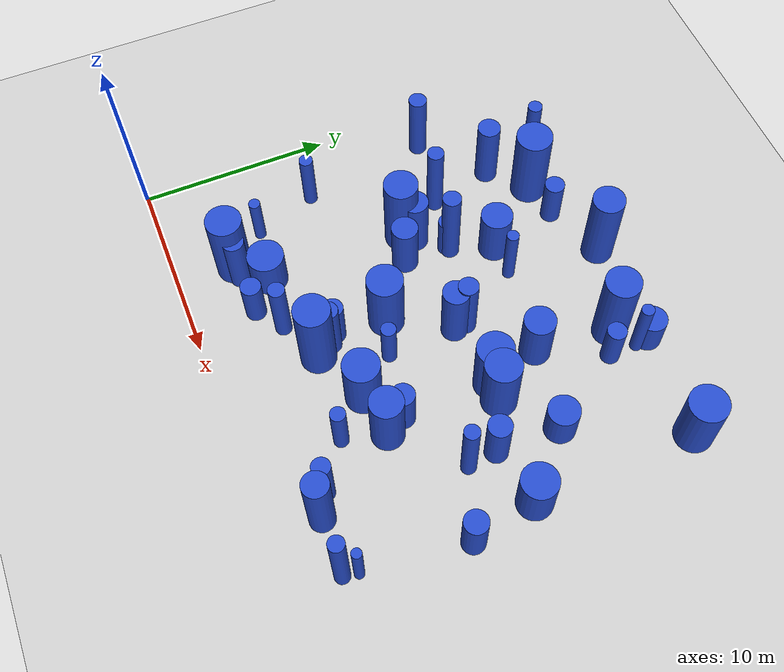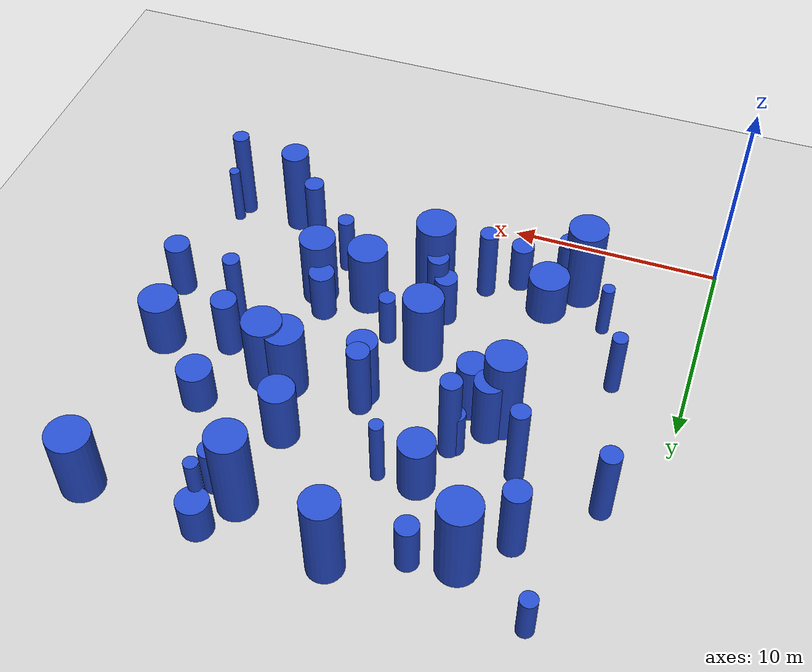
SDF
<sdf version="1.6">
 <world name="default">
  <model name="ground_plane">
   <static>1</static>
   <link name="link">
    <collision name="collision">
     <geometry><plane><normal>0 0 1</normal><size>100 100</size></plane></geometry>
     <surface><friction><ode><mu>100</mu><mu2>50</mu2></ode></friction></surface>
    </collision>
    <visual name="visual">
     <cast_shadows>0</cast_shadows>
     <geometry><plane><normal>0 0 1</normal><size>100 100</size></plane></geometry>
     <material>
      <script><uri>file://media/materials/scripts/gazebo.material</uri><name>Gazebo/Grey</name></script>
     </material>
    </visual>
   </link>
  </model>
  <model name="3">
   <static>0</static>
   <link name="link">
    <inertial>
     <mass>2</mass>
     <inertia><ixx>3.92775</ixx><ixy>0</ixy><ixz>0</ixz><iyy>3.92775</iyy><iyz>0</iyz><izz>0.695081</izz></inertia>
    </inertial>
    <collision name="collision">
     <geometry><cylinder><length>4.63479</length><radius>0.833715</radius></cylinder></geometry>
     <surface><contact><collide_without_contact>1</collide_without_contact></contact></surface>
    </collision>
    <visual name="visual">
     <geometry><cylinder><length>4.63479</length><radius>0.833715</radius></cylinder></geometry>
     <material>
      <script><uri>file://media/materials/scripts/gazebo.material</uri><name>Gazebo/Blue</name></script>
     </material>
    </visual>
    <gravity>0</gravity>
   </link>
   <pose>12.2422 21.1681 2.31739 0 -0 0</pose>
  </model>
  <model name="12">
   <static>0</static>
   <link name="link">
    <inertial>
     <mass>2</mass>
     <inertia><ixx>4.25183</ixx><ixy>0</ixy><ixz>0</ixz><iyy>4.25183</iyy><iyz>0</iyz><izz>0.805611</izz></inertia>
    </inertial>
    <collision name="collision">
     <geometry><cylinder><length>4.80564</length><radius>0.897558</radius></cylinder></geometry>
     <surface><contact><collide_without_contact>1</collide_without_contact></contact></surface>
    </collision>
    <visual name="visual">
     <geometry><cylinder><length>4.80564</length><radius>0.897558</radius></cylinder></geometry>
     <material>
      <script><uri>file://media/materials/scripts/gazebo.material</uri><name>Gazebo/Blue</name></script>
     </material>
    </visual>
    <gravity>0</gravity>
   </link>
   <pose>16.8242 19.5526 2.40282 0 -0 0</pose>
  </model>
  <model name="14">
   <static>0</static>
   <link name="link">
    <inertial>
     <mass>2</mass>
     <inertia><ixx>1.64079</ixx><ixy>0</ixy><ixz>0</ixz><iyy>1.64079</iyy><iyz>0</iyz><izz>0.150374</izz></inertia>
    </inertial>
    <collision name="collision">
     <geometry><cylinder><length>3.0649</length><radius>0.38778</radius></cylinder></geometry>
     <surface><contact><collide_without_contact>1</collide_without_contact></contact></surface>
    </collision>
    <visual name="visual">
     <geometry><cylinder><length>3.0649</length><radius>0.38778</radius></cylinder></geometry>
     <material>
      <script><uri>file://media/materials/scripts/gazebo.material</uri><name>Gazebo/Blue</name></script>
     </material>
    </visual>
    <gravity>0</gravity>
   </link>
   <pose>17.3165 4.85681 1.53245 0 -0 0</pose>
  </model>
  <model name="24">
   <static>0</static>
   <link name="link">
    <inertial>
     <mass>2</mass>
     <inertia><ixx>1.33099</ixx><ixy>0</ixy><ixz>0</ixz><iyy>1.33099</iyy><iyz>0</iyz><izz>0.36083</izz></inertia>
    </inertial>
    <collision name="collision">
     <geometry><cylinder><length>2.62744</length><radius>0.600691</radius></cylinder></geometry>
     <surface><contact><collide_without_contact>1</collide_without_contact></contact></surface>
    </collision>
    <visual name="visual">
     <geometry><cylinder><length>2.62744</length><radius>0.600691</radius></cylinder></geometry>
     <material>
      <script><uri>file://media/materials/scripts/gazebo.material</uri><name>Gazebo/Blue</name></script>
     </material>
    </visual>
    <gravity>0</gravity>
   </link>
   <pose>17.3457 8.06964 1.31372 0 -0 0</pose>
  </model>
  <model name="26">
   <static>0</static>
   <link name="link">
    <inertial>
     <mass>2</mass>
     <inertia><ixx>1.75387</ixx><ixy>0</ixy><ixz>0</ixz><iyy>1.75387</iyy><iyz>0</iyz><izz>0.848622</izz></inertia>
    </inertial>
    <collision name="collision">
     <geometry><cylinder><length>2.82442</length><radius>0.921207</radius></cylinder></geometry>
     <surface><contact><collide_without_contact>1</collide_without_contact></contact></surface>
    </collision>
    <visual name="visual">
     <geometry><cylinder><length>2.82442</length><radius>0.921207</radius></cylinder></geometry>
     <material>
      <script><uri>file://media/materials/scripts/gazebo.material</uri><name>Gazebo/Blue</name></script>
     </material>
    </visual>
    <gravity>0</gravity>
   </link>
   <pose>23.683 12.1353 1.41221 0 -0 0</pose>
  </model>
  <model name="34">
   <static>0</static>
   <link name="link">
    <inertial>
     <mass>2</mass>
     <inertia><ixx>2.73964</ixx><ixy>0</ixy><ixz>0</ixz><iyy>2.73964</iyy><iyz>0</iyz><izz>0.355039</izz></inertia>
    </inertial>
    <collision name="collision">
     <geometry><cylinder><length>3.92081</length><radius>0.595852</radius></cylinder></geometry>
     <surface><contact><collide_without_contact>1</collide_without_contact></contact></surface>
    </collision>
    <visual name="visual">
     <geometry><cylinder><length>3.92081</length><radius>0.595852</radius></cylinder></geometry>
     <material>
      <script><uri>file://media/materials/scripts/gazebo.material</uri><name>Gazebo/Blue</name></script>
     </material>
    </visual>
    <gravity>0</gravity>
   </link>
   <pose>5.35862 17.7826 1.9604 0 -0 0</pose>
  </model>
  <model name="43">
   <static>0</static>
   <link name="link">
    <inertial>
     <mass>2</mass>
     <inertia><ixx>1.09648</ixx><ixy>0</ixy><ixz>0</ixz><iyy>1.09648</iyy><iyz>0</iyz><izz>0.193563</izz></inertia>
    </inertial>
    <collision name="collision">
     <geometry><cylinder><length>2.44912</length><radius>0.439957</radius></cylinder></geometry>
     <surface><contact><collide_without_contact>1</collide_without_contact></contact></surface>
    </collision>
    <visual name="visual">
     <geometry><cylinder><length>2.44912</length><radius>0.439957</radius></cylinder></geometry>
     <material>
      <script><uri>file://media/materials/scripts/gazebo.material</uri><name>Gazebo/Blue</name></script>
     </material>
    </visual>
    <gravity>0</gravity>
   </link>
   <pose>9.04417 13.8401 1.22456 0 -0 0</pose>
  </model>
  <model name="45">
   <static>0</static>
   <link name="link">
    <inertial>
     <mass>2</mass>
     <inertia><ixx>2.79189</ixx><ixy>0</ixy><ixz>0</ixz><iyy>2.79189</iyy><iyz>0</iyz><izz>0.226924</izz></inertia>
    </inertial>
    <collision name="collision">
     <geometry><cylinder><length>4.00881</length><radius>0.476365</radius></cylinder></geometry>
     <surface><contact><collide_without_contact>1</collide_without_contact></contact></surface>
    </collision>
    <visual name="visual">
     <geometry><cylinder><length>4.00881</length><radius>0.476365</radius></cylinder></geometry>
     <material>
      <script><uri>file://media/materials/scripts/gazebo.material</uri><name>Gazebo/Blue</name></script>
     </material>
    </visual>
    <gravity>0</gravity>
   </link>
   <pose>2.27674 14.996 2.00441 0 -0 0</pose>
  </model>
  <model name="51">
   <static>0</static>
   <link name="link">
    <inertial>
     <mass>2</mass>
     <inertia><ixx>1.29974</ixx><ixy>0</ixy><ixz>0</ixz><iyy>1.29974</iyy><iyz>0</iyz><izz>0.9226</izz></inertia>
    </inertial>
    <collision name="collision">
     <geometry><cylinder><length>2.24292</length><radius>0.960521</radius></cylinder></geometry>
     <surface><contact><collide_without_contact>1</collide_without_contact></contact></surface>
    </collision>
    <visual name="visual">
     <geometry><cylinder><length>2.24292</length><radius>0.960521</radius></cylinder></geometry>
     <material>
      <script><uri>file://media/materials/scripts/gazebo.material</uri><name>Gazebo/Blue</name></script>
     </material>
    </visual>
    <gravity>0</gravity>
   </link>
   <pose>7.33392 4.56687 1.12146 0 -0 0</pose>
  </model>
  <model name="53">
   <static>0</static>
   <link name="link">
    <inertial>
     <mass>2</mass>
     <inertia><ixx>2.15544</ixx><ixy>0</ixy><ixz>0</ixz><iyy>2.15544</iyy><iyz>0</iyz><izz>0.1005</izz></inertia>
    </inertial>
    <collision name="collision">
     <geometry><cylinder><length>3.55403</length><radius>0.317017</radius></cylinder></geometry>
     <surface><contact><collide_without_contact>1</collide_without_contact></contact></surface>
    </collision>
    <visual name="visual">
     <geometry><cylinder><length>3.55403</length><radius>0.317017</radius></cylinder></geometry>
     <material>
      <script><uri>file://media/materials/scripts/gazebo.material</uri><name>Gazebo/Blue</name></script>
     </material>
    </visual>
    <gravity>0</gravity>
   </link>
   <pose>11.7398 16.245 1.77701 0 -0 0</pose>
  </model>
  <model name="59">
   <static>0</static>
   <link name="link">
    <inertial>
     <mass>2</mass>
     <inertia><ixx>2.2693</ixx><ixy>0</ixy><ixz>0</ixz><iyy>2.2693</iyy><iyz>0</iyz><izz>0.485292</izz></inertia>
    </inertial>
    <collision name="collision">
     <geometry><cylinder><length>3.4871</length><radius>0.696629</radius></cylinder></geometry>
     <surface><contact><collide_without_contact>1</collide_without_contact></contact></surface>
    </collision>
    <visual name="visual">
     <geometry><cylinder><length>3.4871</length><radius>0.696629</radius></cylinder></geometry>
     <material>
      <script><uri>file://media/materials/scripts/gazebo.material</uri><name>Gazebo/Blue</name></script>
     </material>
    </visual>
    <gravity>0</gravity>
   </link>
   <pose>7.96873 12.509 1.74355 0 -0 0</pose>
  </model>
  <model name="65">
   <static>0</static>
   <link name="link">
    <inertial>
     <mass>2</mass>
     <inertia><ixx>1.80656</ixx><ixy>0</ixy><ixz>0</ixz><iyy>1.80656</iyy><iyz>0</iyz><izz>0.358625</izz></inertia>
    </inertial>
    <collision name="collision">
     <geometry><cylinder><length>3.12466</length><radius>0.598853</radius></cylinder></geometry>
     <surface><contact><collide_without_contact>1</collide_without_contact></contact></surface>
    </collision>
    <visual name="visual">
     <geometry><cylinder><length>3.12466</length><radius>0.598853</radius></cylinder></geometry>
     <material>
      <script><uri>file://media/materials/scripts/gazebo.material</uri><name>Gazebo/Blue</name></script>
     </material>
    </visual>
    <gravity>0</gravity>
   </link>
   <pose>20.6952 11.5157 1.56233 0 -0 0</pose>
  </model>
  <model name="71">
   <static>0</static>
   <link name="link">
    <inertial>
     <mass>2</mass>
     <inertia><ixx>2.9831</ixx><ixy>0</ixy><ixz>0</ixz><iyy>2.9831</iyy><iyz>0</iyz><izz>0.155993</izz></inertia>
    </inertial>
    <collision name="collision">
     <geometry><cylinder><length>4.175</length><radius>0.39496</radius></cylinder></geometry>
     <surface><contact><collide_without_contact>1</collide_without_contact></contact></surface>
    </collision>
    <visual name="visual">
     <geometry><cylinder><length>4.175</length><radius>0.39496</radius></cylinder></geometry>
     <material>
      <script><uri>file://media/materials/scripts/gazebo.material</uri><name>Gazebo/Blue</name></script>
     </material>
    </visual>
    <gravity>0</gravity>
   </link>
   <pose>20.8944 9.97858 2.0875 0 -0 0</pose>
  </model>
  <model name="73">
   <static>0</static>
   <link name="link">
    <inertial>
     <mass>2</mass>
     <inertia><ixx>1.32394</ixx><ixy>0</ixy><ixz>0</ixz><iyy>1.32394</iyy><iyz>0</iyz><izz>0.152551</izz></inertia>
    </inertial>
    <collision name="collision">
     <geometry><cylinder><length>2.73605</length><radius>0.390578</radius></cylinder></geometry>
     <surface><contact><collide_without_contact>1</collide_without_contact></contact></surface>
    </collision>
    <visual name="visual">
     <geometry><cylinder><length>2.73605</length><radius>0.390578</radius></cylinder></geometry>
     <material>
      <script><uri>file://media/materials/scripts/gazebo.material</uri><name>Gazebo/Blue</name></script>
     </material>
    </visual>
    <gravity>0</gravity>
   </link>
   <pose>13.9061 8.69924 1.36803 0 -0 0</pose>
  </model>
  <model name="76">
   <static>0</static>
   <link name="link">
    <inertial>
     <mass>2</mass>
     <inertia><ixx>2.40693</ixx><ixy>0</ixy><ixz>0</ixz><iyy>2.40693</iyy><iyz>0</iyz><izz>0.874203</izz></inertia>
    </inertial>
    <collision name="collision">
     <geometry><cylinder><length>3.43787</length><radius>0.934988</radius></cylinder></geometry>
     <surface><contact><collide_without_contact>1</collide_without_contact></contact></surface>
    </collision>
    <visual name="visual">
     <geometry><cylinder><length>3.43787</length><radius>0.934988</radius></cylinder></geometry>
     <material>
      <script><uri>file://media/materials/scripts/gazebo.material</uri><name>Gazebo/Blue</name></script>
     </material>
    </visual>
    <gravity>0</gravity>
   </link>
   <pose>15.5573 6.6876 1.71894 0 -0 0</pose>
  </model>
  <model name="79">
   <static>0</static>
   <link name="link">
    <inertial>
     <mass>2</mass>
     <inertia><ixx>1.08131</ixx><ixy>0</ixy><ixz>0</ixz><iyy>1.08131</iyy><iyz>0</iyz><izz>0.651344</izz></inertia>
    </inertial>
    <collision name="collision">
     <geometry><cylinder><length>2.12928</length><radius>0.807059</radius></cylinder></geometry>
     <surface><contact><collide_without_contact>1</collide_without_contact></contact></surface>
    </collision>
    <visual name="visual">
     <geometry><cylinder><length>2.12928</length><radius>0.807059</radius></cylinder></geometry>
     <material>
      <script><uri>file://media/materials/scripts/gazebo.material</uri><name>Gazebo/Blue</name></script>
     </material>
    </visual>
    <gravity>0</gravity>
   </link>
   <pose>20.7416 14.8606 1.06464 0 -0 0</pose>
  </model>
  <model name="81">
   <static>0</static>
   <link name="link">
    <inertial>
     <mass>2</mass>
     <inertia><ixx>1.97243</ixx><ixy>0</ixy><ixz>0</ixz><iyy>1.97243</iyy><iyz>0</iyz><izz>0.220158</izz></inertia>
    </inertial>
    <collision name="collision">
     <geometry><cylinder><length>3.34277</length><radius>0.46921</radius></cylinder></geometry>
     <surface><contact><collide_without_contact>1</collide_without_contact></contact></surface>
    </collision>
    <visual name="visual">
     <geometry><cylinder><length>3.34277</length><radius>0.46921</radius></cylinder></geometry>
     <material>
      <script><uri>file://media/materials/scripts/gazebo.material</uri><name>Gazebo/Blue</name></script>
     </material>
    </visual>
    <gravity>0</gravity>
   </link>
   <pose>19.5533 3.24828 1.67138 0 -0 0</pose>
  </model>
  <model name="90">
   <static>0</static>
   <link name="link">
    <inertial>
     <mass>2</mass>
     <inertia><ixx>1.53943</ixx><ixy>0</ixy><ixz>0</ixz><iyy>1.53943</iyy><iyz>0</iyz><izz>0.367092</izz></inertia>
    </inertial>
    <collision name="collision">
     <geometry><cylinder><length>2.85225</length><radius>0.605881</radius></cylinder></geometry>
     <surface><contact><collide_without_contact>1</collide_without_contact></contact></surface>
    </collision>
    <visual name="visual">
     <geometry><cylinder><length>2.85225</length><radius>0.605881</radius></cylinder></geometry>
     <material>
      <script><uri>file://media/materials/scripts/gazebo.material</uri><name>Gazebo/Blue</name></script>
     </material>
    </visual>
    <gravity>0</gravity>
   </link>
   <pose>24.3639 8.72064 1.42612 0 -0 0</pose>
  </model>
  <model name="93">
   <static>0</static>
   <link name="link">
    <inertial>
     <mass>2</mass>
     <inertia><ixx>1.32771</ixx><ixy>0</ixy><ixz>0</ixz><iyy>1.32771</iyy><iyz>0</iyz><izz>0.270722</izz></inertia>
    </inertial>
    <collision name="collision">
     <geometry><cylinder><length>2.67471</length><radius>0.520309</radius></cylinder></geometry>
     <surface><contact><collide_without_contact>1</collide_without_contact></contact></surface>
    </collision>
    <visual name="visual">
     <geometry><cylinder><length>2.67471</length><radius>0.520309</radius></cylinder></geometry>
     <material>
      <script><uri>file://media/materials/scripts/gazebo.material</uri><name>Gazebo/Blue</name></script>
     </material>
    </visual>
    <gravity>0</gravity>
   </link>
   <pose>9.17424 19.8977 1.33735 0 -0 0</pose>
  </model>
  <model name="101">
   <static>0</static>
   <link name="link">
    <inertial>
     <mass>2</mass>
     <inertia>
      <ixx>1.34979</ixx>
      <ixy>0</ixy>
      <ixz>0</ixz>
      <iyy>1.34979</iyy>
      <iyz>0</iyz>
      <izz>0.0901958</izz>
     </inertia>
    </inertial>
    <collision name="collision">
     <geometry><cylinder><length>2.79788</length><radius>0.300326</radius></cylinder></geometry>
     <surface><contact><collide_without_contact>1</collide_without_contact></contact></surface>
    </collision>
    <visual name="visual">
     <geometry><cylinder><length>2.79788</length><radius>0.300326</radius></cylinder></geometry>
     <material>
      <script><uri>file://media/materials/scripts/gazebo.material</uri><name>Gazebo/Blue</name></script>
     </material>
    </visual>
    <gravity>0</gravity>
   </link>
   <pose>4.49145 5.00371 1.39894 0 -0 0</pose>
  </model>
  <model name="102">
   <static>0</static>
   <link name="link">
    <inertial>
     <mass>2</mass>
     <inertia><ixx>3.77962</ixx><ixy>0</ixy><ixz>0</ixz><iyy>3.77962</iyy><iyz>0</iyz><izz>0.157259</izz></inertia>
    </inertial>
    <collision name="collision">
     <geometry><cylinder><length>4.71232</length><radius>0.396559</radius></cylinder></geometry>
     <surface><contact><collide_without_contact>1</collide_without_contact></contact></surface>
    </collision>
    <visual name="visual">
     <geometry><cylinder><length>4.71232</length><radius>0.396559</radius></cylinder></geometry>
     <material>
      <script><uri>file://media/materials/scripts/gazebo.material</uri><name>Gazebo/Blue</name></script>
     </material>
    </visual>
    <gravity>0</gravity>
   </link>
   <pose>23.5561 2.59339 2.35616 0 -0 0</pose>
  </model>
  <model name="105">
   <static>0</static>
   <link name="link">
    <inertial>
     <mass>2</mass>
     <inertia><ixx>3.37564</ixx><ixy>0</ixy><ixz>0</ixz><iyy>3.37564</iyy><iyz>0</iyz><izz>0.188264</izz></inertia>
    </inertial>
    <collision name="collision">
     <geometry><cylinder><length>4.43724</length><radius>0.433894</radius></cylinder></geometry>
     <surface><contact><collide_without_contact>1</collide_without_contact></contact></surface>
    </collision>
    <visual name="visual">
     <geometry><cylinder><length>4.43724</length><radius>0.433894</radius></cylinder></geometry>
     <material>
      <script><uri>file://media/materials/scripts/gazebo.material</uri><name>Gazebo/Blue</name></script>
     </material>
    </visual>
    <gravity>0</gravity>
   </link>
   <pose>6.19335 14.3822 2.21862 0 -0 0</pose>
  </model>
  <model name="112">
   <static>0</static>
   <link name="link">
    <inertial>
     <mass>2</mass>
     <inertia><ixx>2.22649</ixx><ixy>0</ixy><ixz>0</ixz><iyy>2.22649</iyy><iyz>0</iyz><izz>0.105243</izz></inertia>
    </inertial>
    <collision name="collision">
     <geometry><cylinder><length>3.61154</length><radius>0.324412</radius></cylinder></geometry>
     <surface><contact><collide_without_contact>1</collide_without_contact></contact></surface>
    </collision>
    <visual name="visual">
     <geometry><cylinder><length>3.61154</length><radius>0.324412</radius></cylinder></geometry>
     <material>
      <script><uri>file://media/materials/scripts/gazebo.material</uri><name>Gazebo/Blue</name></script>
     </material>
    </visual>
    <gravity>0</gravity>
   </link>
   <pose>18.0812 20.4251 1.80577 0 -0 0</pose>
  </model>
  <model name="121">
   <static>0</static>
   <link name="link">
    <inertial>
     <mass>2</mass>
     <inertia><ixx>4.19892</ixx><ixy>0</ixy><ixz>0</ixz><iyy>4.19892</iyy><iyz>0</iyz><izz>0.848081</izz></inertia>
    </inertial>
    <collision name="collision">
     <geometry><cylinder><length>4.75913</length><radius>0.920913</radius></cylinder></geometry>
     <surface><contact><collide_without_contact>1</collide_without_contact></contact></surface>
    </collision>
    <visual name="visual">
     <geometry><cylinder><length>4.75913</length><radius>0.920913</radius></cylinder></geometry>
     <material>
      <script><uri>file://media/materials/scripts/gazebo.material</uri><name>Gazebo/Blue</name></script>
     </material>
    </visual>
    <gravity>0</gravity>
   </link>
   <pose>12.6643 5.37511 2.37956 0 -0 0</pose>
  </model>
  <model name="124">
   <static>0</static>
   <link name="link">
    <inertial>
     <mass>2</mass>
     <inertia><ixx>1.34934</ixx><ixy>0</ixy><ixz>0</ixz><iyy>1.34934</iyy><iyz>0</iyz><izz>0.287212</izz></inertia>
    </inertial>
    <collision name="collision">
     <geometry><cylinder><length>2.68969</length><radius>0.535922</radius></cylinder></geometry>
     <surface><contact><collide_without_contact>1</collide_without_contact></contact></surface>
    </collision>
    <visual name="visual">
     <geometry><cylinder><length>2.68969</length><radius>0.535922</radius></cylinder></geometry>
     <material>
      <script><uri>file://media/materials/scripts/gazebo.material</uri><name>Gazebo/Blue</name></script>
     </material>
    </visual>
    <gravity>0</gravity>
   </link>
   <pose>11.7516 6.60939 1.34484 0 -0 0</pose>
  </model>
  <model name="131">
   <static>0</static>
   <link name="link">
    <inertial>
     <mass>2</mass>
     <inertia><ixx>4.03108</ixx><ixy>0</ixy><ixz>0</ixz><iyy>4.03108</iyy><iyz>0</iyz><izz>0.794484</izz></inertia>
    </inertial>
    <collision name="collision">
     <geometry><cylinder><length>4.66937</length><radius>0.891338</radius></cylinder></geometry>
     <surface><contact><collide_without_contact>1</collide_without_contact></contact></surface>
    </collision>
    <visual name="visual">
     <geometry><cylinder><length>4.66937</length><radius>0.891338</radius></cylinder></geometry>
     <material>
      <script><uri>file://media/materials/scripts/gazebo.material</uri><name>Gazebo/Blue</name></script>
     </material>
    </visual>
    <gravity>0</gravity>
   </link>
   <pose>7.50554 11.9354 2.33469 0 -0 0</pose>
  </model>
  <model name="135">
   <static>0</static>
   <link name="link">
    <inertial>
     <mass>2</mass>
     <inertia><ixx>1.0015</ixx><ixy>0</ixy><ixz>0</ixz><iyy>1.0015</iyy><iyz>0</iyz><izz>0.153154</izz></inertia>
    </inertial>
    <collision name="collision">
     <geometry><cylinder><length>2.35575</length><radius>0.391349</radius></cylinder></geometry>
     <surface><contact><collide_without_contact>1</collide_without_contact></contact></surface>
    </collision>
    <visual name="visual">
     <geometry><cylinder><length>2.35575</length><radius>0.391349</radius></cylinder></geometry>
     <material>
      <script><uri>file://media/materials/scripts/gazebo.material</uri><name>Gazebo/Blue</name></script>
     </material>
    </visual>
    <gravity>0</gravity>
   </link>
   <pose>3.82412 21.3325 1.17787 0 -0 0</pose>
  </model>
  <model name="141">
   <static>0</static>
   <link name="link">
    <inertial>
     <mass>2</mass>
     <inertia><ixx>3.06213</ixx><ixy>0</ixy><ixz>0</ixz><iyy>3.06213</iyy><iyz>0</iyz><izz>0.865013</izz></inertia>
    </inertial>
    <collision name="collision">
     <geometry><cylinder><length>3.97212</length><radius>0.930061</radius></cylinder></geometry>
     <surface><contact><collide_without_contact>1</collide_without_contact></contact></surface>
    </collision>
    <visual name="visual">
     <geometry><cylinder><length>3.97212</length><radius>0.930061</radius></cylinder></geometry>
     <material>
      <script><uri>file://media/materials/scripts/gazebo.material</uri><name>Gazebo/Blue</name></script>
     </material>
    </visual>
    <gravity>0</gravity>
   </link>
   <pose>11.9843 9.29499 1.98606 0 -0 0</pose>
  </model>
  <model name="142">
   <static>0</static>
   <link name="link">
    <inertial>
     <mass>2</mass>
     <inertia>
      <ixx>1.59611</ixx>
      <ixy>0</ixy>
      <ixz>0</ixz>
      <iyy>1.59611</iyy>
      <iyz>0</iyz>
      <izz>0.0654625</izz>
     </inertia>
    </inertial>
    <collision name="collision">
     <geometry><cylinder><length>3.06272</length><radius>0.255856</radius></cylinder></geometry>
     <surface><contact><collide_without_contact>1</collide_without_contact></contact></surface>
    </collision>
    <visual name="visual">
     <geometry><cylinder><length>3.06272</length><radius>0.255856</radius></cylinder></geometry>
     <material>
      <script><uri>file://media/materials/scripts/gazebo.material</uri><name>Gazebo/Blue</name></script>
     </material>
    </visual>
    <gravity>0</gravity>
   </link>
   <pose>23.7498 3.3464 1.53136 0 -0 0</pose>
  </model>
  <model name="148">
   <static>0</static>
   <link name="link">
    <inertial>
     <mass>2</mass>
     <inertia><ixx>2.53307</ixx><ixy>0</ixy><ixz>0</ixz><iyy>2.53307</iyy><iyz>0</iyz><izz>0.271163</izz></inertia>
    </inertial>
    <collision name="collision">
     <geometry><cylinder><length>3.79275</length><radius>0.520733</radius></cylinder></geometry>
     <surface><contact><collide_without_contact>1</collide_without_contact></contact></surface>
    </collision>
    <visual name="visual">
     <geometry><cylinder><length>3.79275</length><radius>0.520733</radius></cylinder></geometry>
     <material>
      <script><uri>file://media/materials/scripts/gazebo.material</uri><name>Gazebo/Blue</name></script>
     </material>
    </visual>
    <gravity>0</gravity>
   </link>
   <pose>13.728 12.9555 1.89637 0 -0 0</pose>
  </model>
  <model name="152">
   <static>0</static>
   <link name="link">
    <inertial>
     <mass>2</mass>
     <inertia>
      <ixx>0.925592</ixx>
      <ixy>0</ixy>
      <ixz>0</ixz>
      <iyy>0.925592</iyy>
      <iyz>0</iyz>
      <izz>0.517136</izz>
     </inertia>
    </inertial>
    <collision name="collision">
     <geometry><cylinder><length>2.00054</length><radius>0.719122</radius></cylinder></geometry>
     <surface><contact><collide_without_contact>1</collide_without_contact></contact></surface>
    </collision>
    <visual name="visual">
     <geometry><cylinder><length>2.00054</length><radius>0.719122</radius></cylinder></geometry>
     <material>
      <script><uri>file://media/materials/scripts/gazebo.material</uri><name>Gazebo/Blue</name></script>
     </material>
    </visual>
    <gravity>0</gravity>
   </link>
   <pose>17.9226 21.1337 1.00027 0 -0 0</pose>
  </model>
  <model name="158">
   <static>0</static>
   <link name="link">
    <inertial>
     <mass>2</mass>
     <inertia><ixx>2.58305</ixx><ixy>0</ixy><ixz>0</ixz><iyy>2.58305</iyy><iyz>0</iyz><izz>0.972073</izz></inertia>
    </inertial>
    <collision name="collision">
     <geometry><cylinder><length>3.54713</length><radius>0.985937</radius></cylinder></geometry>
     <surface><contact><collide_without_contact>1</collide_without_contact></contact></surface>
    </collision>
    <visual name="visual">
     <geometry><cylinder><length>3.54713</length><radius>0.985937</radius></cylinder></geometry>
     <material>
      <script><uri>file://media/materials/scripts/gazebo.material</uri><name>Gazebo/Blue</name></script>
     </material>
    </visual>
    <gravity>0</gravity>
   </link>
   <pose>23.4601 20.6996 1.77356 0 -0 0</pose>
  </model>
  <model name="161">
   <static>0</static>
   <link name="link">
    <inertial>
     <mass>2</mass>
     <inertia><ixx>1.20429</ixx><ixy>0</ixy><ixz>0</ixz><iyy>1.20429</iyy><iyz>0</iyz><izz>0.28602</izz></inertia>
    </inertial>
    <collision name="collision">
     <geometry><cylinder><length>2.52343</length><radius>0.534809</radius></cylinder></geometry>
     <surface><contact><collide_without_contact>1</collide_without_contact></contact></surface>
    </collision>
    <visual name="visual">
     <geometry><cylinder><length>2.52343</length><radius>0.534809</radius></cylinder></geometry>
     <material>
      <script><uri>file://media/materials/scripts/gazebo.material</uri><name>Gazebo/Blue</name></script>
     </material>
    </visual>
    <gravity>0</gravity>
   </link>
   <pose>8.96403 3.3004 1.26171 0 -0 0</pose>
  </model>
  <model name="162">
   <static>0</static>
   <link name="link">
    <inertial>
     <mass>2</mass>
     <inertia><ixx>2.51589</ixx><ixy>0</ixy><ixz>0</ixz><iyy>2.51589</iyy><iyz>0</iyz><izz>0.473337</izz></inertia>
    </inertial>
    <collision name="collision">
     <geometry><cylinder><length>3.69802</length><radius>0.687995</radius></cylinder></geometry>
     <surface><contact><collide_without_contact>1</collide_without_contact></contact></surface>
    </collision>
    <visual name="visual">
     <geometry><cylinder><length>3.69802</length><radius>0.687995</radius></cylinder></geometry>
     <material>
      <script><uri>file://media/materials/scripts/gazebo.material</uri><name>Gazebo/Blue</name></script>
     </material>
    </visual>
    <gravity>0</gravity>
   </link>
   <pose>13.7713 12.2969 1.84901 0 -0 0</pose>
  </model>
  <model name="169">
   <static>0</static>
   <link name="link">
    <inertial>
     <mass>2</mass>
     <inertia><ixx>3.62148</ixx><ixy>0</ixy><ixz>0</ixz><iyy>3.62148</iyy><iyz>0</iyz><izz>0.427754</izz></inertia>
    </inertial>
    <collision name="collision">
     <geometry><cylinder><length>4.52169</length><radius>0.654029</radius></cylinder></geometry>
     <surface><contact><collide_without_contact>1</collide_without_contact></contact></surface>
    </collision>
    <visual name="visual">
     <geometry><cylinder><length>4.52169</length><radius>0.654029</radius></cylinder></geometry>
     <material>
      <script><uri>file://media/materials/scripts/gazebo.material</uri><name>Gazebo/Blue</name></script>
     </material>
    </visual>
    <gravity>0</gravity>
   </link>
   <pose>20.7021 2.66802 2.26084 0 -0 0</pose>
  </model>
  <model name="179">
   <static>0</static>
   <link name="link">
    <inertial>
     <mass>2</mass>
     <inertia><ixx>3.63462</ixx><ixy>0</ixy><ixz>0</ixz><iyy>3.63462</iyy><iyz>0</iyz><izz>0.851751</izz></inertia>
    </inertial>
    <collision name="collision">
     <geometry><cylinder><length>4.38776</length><radius>0.922903</radius></cylinder></geometry>
     <surface><contact><collide_without_contact>1</collide_without_contact></contact></surface>
    </collision>
    <visual name="visual">
     <geometry><cylinder><length>4.38776</length><radius>0.922903</radius></cylinder></geometry>
     <material>
      <script><uri>file://media/materials/scripts/gazebo.material</uri><name>Gazebo/Blue</name></script>
     </material>
    </visual>
    <gravity>0</gravity>
   </link>
   <pose>6.0278 3.09668 2.19388 0 -0 0</pose>
  </model>
  <model name="182">
   <static>0</static>
   <link name="link">
    <inertial>
     <mass>2</mass>
     <inertia><ixx>2.68017</ixx><ixy>0</ixy><ixz>0</ixz><iyy>2.68017</iyy><iyz>0</iyz><izz>0.716184</izz></inertia>
    </inertial>
    <collision name="collision">
     <geometry><cylinder><length>3.73262</length><radius>0.846277</radius></cylinder></geometry>
     <surface><contact><collide_without_contact>1</collide_without_contact></contact></surface>
    </collision>
    <visual name="visual">
     <geometry><cylinder><length>3.73262</length><radius>0.846277</radius></cylinder></geometry>
     <material>
      <script><uri>file://media/materials/scripts/gazebo.material</uri><name>Gazebo/Blue</name></script>
     </material>
    </visual>
    <gravity>0</gravity>
   </link>
   <pose>17.889 7.04616 1.86631 0 -0 0</pose>
  </model>
  <model name="184">
   <static>0</static>
   <link name="link">
    <inertial>
     <mass>2</mass>
     <inertia><ixx>1.36803</ixx><ixy>0</ixy><ixz>0</ixz><iyy>1.36803</iyy><iyz>0</iyz><izz>0.116416</izz></inertia>
    </inertial>
    <collision name="collision">
     <geometry><cylinder><length>2.80338</length><radius>0.341198</radius></cylinder></geometry>
     <surface><contact><collide_without_contact>1</collide_without_contact></contact></surface>
    </collision>
    <visual name="visual">
     <geometry><cylinder><length>2.80338</length><radius>0.341198</radius></cylinder></geometry>
     <material>
      <script><uri>file://media/materials/scripts/gazebo.material</uri><name>Gazebo/Blue</name></script>
     </material>
    </visual>
    <gravity>0</gravity>
   </link>
   <pose>8.4751 11.947 1.40169 0 -0 0</pose>
  </model>
  <model name="185">
   <static>0</static>
   <link name="link">
    <inertial>
     <mass>2</mass>
     <inertia><ixx>1.95386</ixx><ixy>0</ixy><ixz>0</ixz><iyy>1.95386</iyy><iyz>0</iyz><izz>0.128086</izz></inertia>
    </inertial>
    <collision name="collision">
     <geometry><cylinder><length>3.36733</length><radius>0.357891</radius></cylinder></geometry>
     <surface><contact><collide_without_contact>1</collide_without_contact></contact></surface>
    </collision>
    <visual name="visual">
     <geometry><cylinder><length>3.36733</length><radius>0.357891</radius></cylinder></geometry>
     <material>
      <script><uri>file://media/materials/scripts/gazebo.material</uri><name>Gazebo/Blue</name></script>
     </material>
    </visual>
    <gravity>0</gravity>
   </link>
   <pose>3.30288 8.27583 1.68366 0 -0 0</pose>
  </model>
  <model name="191">
   <static>0</static>
   <link name="link">
    <inertial>
     <mass>2</mass>
     <inertia><ixx>3.75067</ixx><ixy>0</ixy><ixz>0</ixz><iyy>3.75067</iyy><iyz>0</iyz><izz>0.232087</izz></inertia>
    </inertial>
    <collision name="collision">
     <geometry><cylinder><length>4.66988</length><radius>0.481754</radius></cylinder></geometry>
     <surface><contact><collide_without_contact>1</collide_without_contact></contact></surface>
    </collision>
    <visual name="visual">
     <geometry><cylinder><length>4.66988</length><radius>0.481754</radius></cylinder></geometry>
     <material>
      <script><uri>file://media/materials/scripts/gazebo.material</uri><name>Gazebo/Blue</name></script>
     </material>
    </visual>
    <gravity>0</gravity>
   </link>
   <pose>9.25658 13.9749 2.33494 0 -0 0</pose>
  </model>
  <model name="196">
   <static>0</static>
   <link name="link">
    <inertial>
     <mass>2</mass>
     <inertia><ixx>2.49484</ixx><ixy>0</ixy><ixz>0</ixz><iyy>2.49484</iyy><iyz>0</iyz><izz>0.187798</izz></inertia>
    </inertial>
    <collision name="collision">
     <geometry><cylinder><length>3.79547</length><radius>0.433356</radius></cylinder></geometry>
     <surface><contact><collide_without_contact>1</collide_without_contact></contact></surface>
    </collision>
    <visual name="visual">
     <geometry><cylinder><length>3.79547</length><radius>0.433356</radius></cylinder></geometry>
     <material>
      <script><uri>file://media/materials/scripts/gazebo.material</uri><name>Gazebo/Blue</name></script>
     </material>
    </visual>
    <gravity>0</gravity>
   </link>
   <pose>10.3997 4.29556 1.89774 0 -0 0</pose>
  </model>
  <model name="206">
   <static>0</static>
   <link name="link">
    <inertial>
     <mass>2</mass>
     <inertia><ixx>1.22193</ixx><ixy>0</ixy><ixz>0</ixz><iyy>1.22193</iyy><iyz>0</iyz><izz>0.244229</izz></inertia>
    </inertial>
    <collision name="collision">
     <geometry><cylinder><length>2.56883</length><radius>0.494195</radius></cylinder></geometry>
     <surface><contact><collide_without_contact>1</collide_without_contact></contact></surface>
    </collision>
    <visual name="visual">
     <geometry><cylinder><length>2.56883</length><radius>0.494195</radius></cylinder></geometry>
     <material>
      <script><uri>file://media/materials/scripts/gazebo.material</uri><name>Gazebo/Blue</name></script>
     </material>
    </visual>
    <gravity>0</gravity>
   </link>
   <pose>18.097 18.9432 1.28442 0 -0 0</pose>
  </model>
  <model name="208">
   <static>0</static>
   <link name="link">
    <inertial>
     <mass>2</mass>
     <inertia><ixx>2.09139</ixx><ixy>0</ixy><ixz>0</ixz><iyy>2.09139</iyy><iyz>0</iyz><izz>0.317675</izz></inertia>
    </inertial>
    <collision name="collision">
     <geometry><cylinder><length>3.40519</length><radius>0.563626</radius></cylinder></geometry>
     <surface><contact><collide_without_contact>1</collide_without_contact></contact></surface>
    </collision>
    <visual name="visual">
     <geometry><cylinder><length>3.40519</length><radius>0.563626</radius></cylinder></geometry>
     <material>
      <script><uri>file://media/materials/scripts/gazebo.material</uri><name>Gazebo/Blue</name></script>
     </material>
    </visual>
    <gravity>0</gravity>
   </link>
   <pose>6.72108 3.21492 1.70259 0 -0 0</pose>
  </model>
  <model name="212">
   <static>0</static>
   <link name="link">
    <inertial>
     <mass>2</mass>
     <inertia><ixx>1.88161</ixx><ixy>0</ixy><ixz>0</ixz><iyy>1.88161</iyy><iyz>0</iyz><izz>0.472566</izz></inertia>
    </inertial>
    <collision name="collision">
     <geometry><cylinder><length>3.14197</length><radius>0.687434</radius></cylinder></geometry>
     <surface><contact><collide_without_contact>1</collide_without_contact></contact></surface>
    </collision>
    <visual name="visual">
     <geometry><cylinder><length>3.14197</length><radius>0.687434</radius></cylinder></geometry>
     <material>
      <script><uri>file://media/materials/scripts/gazebo.material</uri><name>Gazebo/Blue</name></script>
     </material>
    </visual>
    <gravity>0</gravity>
   </link>
   <pose>9.0333 11.5159 1.57098 0 -0 0</pose>
  </model>
  <model name="220">
   <static>0</static>
   <link name="link">
    <inertial>
     <mass>2</mass>
     <inertia><ixx>2.01038</ixx><ixy>0</ixy><ixz>0</ixz><iyy>2.01038</iyy><iyz>0</iyz><izz>0.654617</izz></inertia>
    </inertial>
    <collision name="collision">
     <geometry><cylinder><length>3.1778</length><radius>0.809084</radius></cylinder></geometry>
     <surface><contact><collide_without_contact>1</collide_without_contact></contact></surface>
    </collision>
    <visual name="visual">
     <geometry><cylinder><length>3.1778</length><radius>0.809084</radius></cylinder></geometry>
     <material>
      <script><uri>file://media/materials/scripts/gazebo.material</uri><name>Gazebo/Blue</name></script>
     </material>
    </visual>
    <gravity>0</gravity>
   </link>
   <pose>16.4504 15.5437 1.5889 0 -0 0</pose>
  </model>
  <model name="226">
   <static>0</static>
   <link name="link">
    <inertial>
     <mass>2</mass>
     <inertia><ixx>2.73322</ixx><ixy>0</ixy><ixz>0</ixz><iyy>2.73322</iyy><iyz>0</iyz><izz>0.870764</izz></inertia>
    </inertial>
    <collision name="collision">
     <geometry><cylinder><length>3.71309</length><radius>0.933148</radius></cylinder></geometry>
     <surface><contact><collide_without_contact>1</collide_without_contact></contact></surface>
    </collision>
    <visual name="visual">
     <geometry><cylinder><length>3.71309</length><radius>0.933148</radius></cylinder></geometry>
     <material>
      <script><uri>file://media/materials/scripts/gazebo.material</uri><name>Gazebo/Blue</name></script>
     </material>
    </visual>
    <gravity>0</gravity>
   </link>
   <pose>17.2676 12.7973 1.85655 0 -0 0</pose>
  </model>
  <model name="234">
   <static>0</static>
   <link name="link">
    <inertial>
     <mass>2</mass>
     <inertia><ixx>2.17715</ixx><ixy>0</ixy><ixz>0</ixz><iyy>2.17715</iyy><iyz>0</iyz><izz>0.251481</izz></inertia>
    </inertial>
    <collision name="collision">
     <geometry><cylinder><length>3.50834</length><radius>0.501479</radius></cylinder></geometry>
     <surface><contact><collide_without_contact>1</collide_without_contact></contact></surface>
    </collision>
    <visual name="visual">
     <geometry><cylinder><length>3.50834</length><radius>0.501479</radius></cylinder></geometry>
     <material>
      <script><uri>file://media/materials/scripts/gazebo.material</uri><name>Gazebo/Blue</name></script>
     </material>
    </visual>
    <gravity>0</gravity>
   </link>
   <pose>12.2579 6.24214 1.75417 0 -0 0</pose>
  </model>
  <model name="236">
   <static>0</static>
   <link name="link">
    <inertial>
     <mass>2</mass>
     <inertia><ixx>1.83847</ixx><ixy>0</ixy><ixz>0</ixz><iyy>1.83847</iyy><iyz>0</iyz><izz>0.675813</izz></inertia>
    </inertial>
    <collision name="collision">
     <geometry><cylinder><length>3.00056</length><radius>0.822079</radius></cylinder></geometry>
     <surface><contact><collide_without_contact>1</collide_without_contact></contact></surface>
    </collision>
    <visual name="visual">
     <geometry><cylinder><length>3.00056</length><radius>0.822079</radius></cylinder></geometry>
     <material>
      <script><uri>file://media/materials/scripts/gazebo.material</uri><name>Gazebo/Blue</name></script>
     </material>
    </visual>
    <gravity>0</gravity>
   </link>
   <pose>10.0049 16.1946 1.50028 0 -0 0</pose>
  </model>
  <model name="237">
   <static>0</static>
   <link name="link">
    <inertial>
     <mass>2</mass>
     <inertia><ixx>2.88834</ixx><ixy>0</ixy><ixz>0</ixz><iyy>2.88834</iyy><iyz>0</iyz><izz>0.848558</izz></inertia>
    </inertial>
    <collision name="collision">
     <geometry><cylinder><length>3.84504</length><radius>0.921172</radius></cylinder></geometry>
     <surface><contact><collide_without_contact>1</collide_without_contact></contact></surface>
    </collision>
    <visual name="visual">
     <geometry><cylinder><length>3.84504</length><radius>0.921172</radius></cylinder></geometry>
     <material>
      <script><uri>file://media/materials/scripts/gazebo.material</uri><name>Gazebo/Blue</name></script>
     </material>
    </visual>
    <gravity>0</gravity>
   </link>
   <pose>18.2669 12.7496 1.92252 0 -0 0</pose>
  </model>
  <model name="238">
   <static>0</static>
   <link name="link">
    <inertial>
     <mass>2</mass>
     <inertia><ixx>3.80887</ixx><ixy>0</ixy><ixz>0</ixz><iyy>3.80887</iyy><iyz>0</iyz><izz>0.89515</izz></inertia>
    </inertial>
    <collision name="collision">
     <geometry><cylinder><length>4.49085</length><radius>0.946124</radius></cylinder></geometry>
     <surface><contact><collide_without_contact>1</collide_without_contact></contact></surface>
    </collision>
    <visual name="visual">
     <geometry><cylinder><length>4.49085</length><radius>0.946124</radius></cylinder></geometry>
     <material>
      <script><uri>file://media/materials/scripts/gazebo.material</uri><name>Gazebo/Blue</name></script>
     </material>
    </visual>
    <gravity>0</gravity>
   </link>
   <pose>7.16971 19.5057 2.24543 0 -0 0</pose>
  </model>
 </world>
</sdf>
